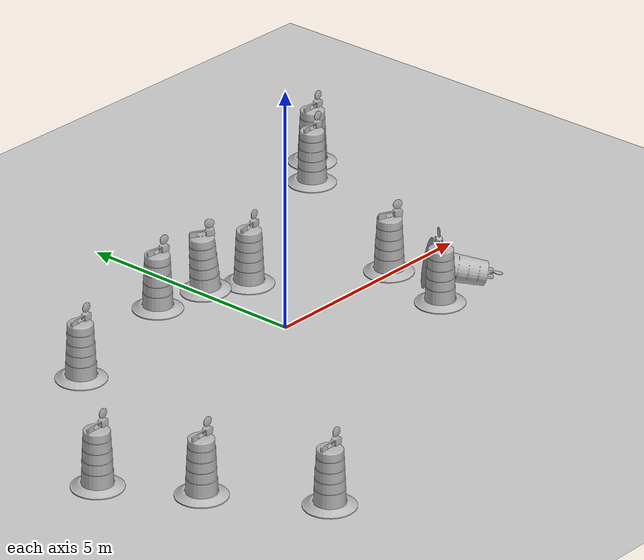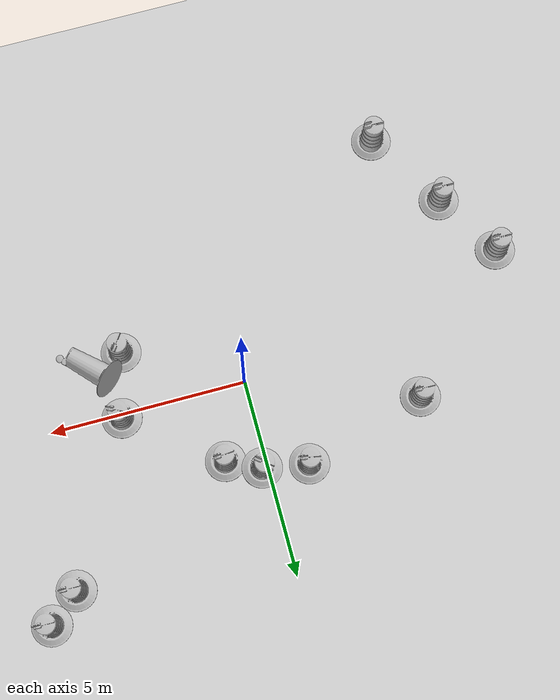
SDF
<sdf version="1.7">
 <world name="default">
  <light name="sun" type="directional">
   <pose>0 0 10 0 -0 0</pose>
   <diffuse>0.8 0.8 0.8 1</diffuse>
   <specular>0.2 0.2 0.2 1</specular>
   <attenuation>
    <range>1000</range>
    <constant>0.9</constant>
    <linear>0.01</linear>
    <quadratic>0.001</quadratic>
   </attenuation>
   <direction>-0.5 0.1 -0.9</direction>
   <spot><inner_angle>0</inner_angle><outer_angle>0</outer_angle><falloff>0</falloff></spot>
  </light>
  <model name="ground_plane">
   <static>1</static>
   <link name="link">
    <collision name="collision">
     <geometry><plane><normal>0 0 1</normal><size>100 100</size></plane></geometry>
     <surface>
      <contact><collide_bitmask>65535</collide_bitmask></contact>
      <friction><ode><mu>100</mu><mu2>50</mu2></ode></friction>
     </surface>
    </collision>
    <visual name="visual">
     <cast_shadows>0</cast_shadows>
     <geometry><plane><normal>0 0 1</normal><size>100 100</size></plane></geometry>
     <material>
      <script><uri>file://media/materials/scripts/gazebo.material</uri><name>Gazebo/Grey</name></script>
     </material>
    </visual>
   </link>
  </model>
  <gravity>0 0 -9.8</gravity>
  <magnetic_field>6e-06 2.3e-05 -4.2e-05</magnetic_field>
  <atmosphere type="adiabatic"/>
  <physics type="ode">
   <max_step_size>0.001</max_step_size>
   <real_time_factor>1</real_time_factor>
   <real_time_update_rate>1000</real_time_update_rate>
  </physics>
  <scene><ambient>0.4 0.4 0.4 1</ambient><background>0.7 0.7 0.7 1</background><shadows>1</shadows></scene>
  <audio><device>default</device></audio>
  <spherical_coordinates>
   <surface_model>EARTH_WGS84</surface_model>
   <latitude_deg>0</latitude_deg>
   <longitude_deg>0</longitude_deg>
   <elevation>0</elevation>
   <heading_deg>0</heading_deg>
  </spherical_coordinates>
  <model name="Construction Barrel">
   <link name="link">
    <inertial>
     <pose>0 0 0.4 0 -0 0</pose>
     <mass>500</mass>
     <inertia><ixx>51.2096</ixx><iyy>51.2096</iyy><izz>25</izz><ixy>0</ixy><ixz>0</ixz><iyz>0</iyz></inertia>
    </inertial>
    <collision name="collision">
     <geometry><mesh><uri>model://construction_barrel/meshes/construction_barrel.dae</uri></mesh></geometry>
    </collision>
    <visual name="visual">
     <geometry><mesh><uri>model://construction_barrel/meshes/construction_barrel.dae</uri></mesh></geometry>
    </visual>
   </link>
   <pose>3.19259 0.08221 -1e-06 6e-06 2e-06 -0.4433</pose>
  </model>
  <model name="Construction Barrel_0">
   <link name="link">
    <inertial>
     <pose>0 0 0.4 0 -0 0</pose>
     <mass>500</mass>
     <inertia><ixx>51.2096</ixx><iyy>51.2096</iyy><izz>25</izz><ixy>0</ixy><ixz>0</ixz><iyz>0</iyz></inertia>
    </inertial>
    <collision name="collision">
     <geometry><mesh><uri>model://construction_barrel/meshes/construction_barrel.dae</uri></mesh></geometry>
    </collision>
    <visual name="visual">
     <geometry><mesh><uri>model://construction_barrel/meshes/construction_barrel.dae</uri></mesh></geometry>
    </visual>
   </link>
   <pose>3.22383 -0.868695 0.497942 1.7913 0.127765 0.800915</pose>
  </model>
  <model name="Construction Barrel_1">
   <link name="link">
    <inertial>
     <pose>0 0 0.4 0 -0 0</pose>
     <mass>500</mass>
     <inertia><ixx>51.2096</ixx><iyy>51.2096</iyy><izz>25</izz><ixy>0</ixy><ixz>0</ixz><iyz>0</iyz></inertia>
    </inertial>
    <collision name="collision">
     <geometry><mesh><uri>model://construction_barrel/meshes/construction_barrel.dae</uri></mesh></geometry>
    </collision>
    <visual name="visual">
     <geometry><mesh><uri>model://construction_barrel/meshes/construction_barrel.dae</uri></mesh></geometry>
    </visual>
   </link>
   <pose>2.81489 -1.54923 -1e-06 3e-06 -2e-06 0.957749</pose>
  </model>
  <model name="Construction Barrel_2">
   <link name="link">
    <inertial>
     <pose>0 0 0.4 0 -0 0</pose>
     <mass>500</mass>
     <inertia><ixx>51.2096</ixx><iyy>51.2096</iyy><izz>25</izz><ixy>0</ixy><ixz>0</ixz><iyz>0</iyz></inertia>
    </inertial>
    <collision name="collision">
     <geometry><mesh><uri>model://construction_barrel/meshes/construction_barrel.dae</uri></mesh></geometry>
    </collision>
    <visual name="visual">
     <geometry><mesh><uri>model://construction_barrel/meshes/construction_barrel.dae</uri></mesh></geometry>
    </visual>
   </link>
   <pose>-7.06435 -1.67637 -1e-06 2e-06 -1e-06 -1.9e-05</pose>
  </model>
  <model name="Construction Barrel_3">
   <link name="link">
    <inertial>
     <pose>0 0 0.4 0 -0 0</pose>
     <mass>500</mass>
     <inertia><ixx>51.2096</ixx><iyy>51.2096</iyy><izz>25</izz><ixy>0</ixy><ixz>0</ixz><iyz>0</iyz></inertia>
    </inertial>
    <collision name="collision">
     <geometry><mesh><uri>model://construction_barrel/meshes/construction_barrel.dae</uri></mesh></geometry>
    </collision>
    <visual name="visual">
     <geometry><mesh><uri>model://construction_barrel/meshes/construction_barrel.dae</uri></mesh></geometry>
    </visual>
   </link>
   <pose>-4.80146 -5.31465 -2e-06 1e-06 8e-06 -1.8e-05</pose>
  </model>
  <model name="Construction Barrel_4">
   <link name="link">
    <inertial>
     <pose>0 0 0.4 0 -0 0</pose>
     <mass>500</mass>
     <inertia><ixx>51.2096</ixx><iyy>51.2096</iyy><izz>25</izz><ixy>0</ixy><ixz>0</ixz><iyz>0</iyz></inertia>
    </inertial>
    <collision name="collision">
     <geometry><mesh><uri>model://construction_barrel/meshes/construction_barrel.dae</uri></mesh></geometry>
    </collision>
    <visual name="visual">
     <geometry><mesh><uri>model://construction_barrel/meshes/construction_barrel.dae</uri></mesh></geometry>
    </visual>
   </link>
   <pose>-6.04713 -3.31257 -0 0 -0 -1.5e-05</pose>
  </model>
  <model name="Construction Barrel_5">
   <link name="link">
    <inertial>
     <pose>0 0 0.4 0 -0 0</pose>
     <mass>500</mass>
     <inertia><ixx>51.2096</ixx><iyy>51.2096</iyy><izz>25</izz><ixy>0</ixy><ixz>0</ixz><iyz>0</iyz></inertia>
    </inertial>
    <collision name="collision">
     <geometry><mesh><uri>model://construction_barrel/meshes/construction_barrel.dae</uri></mesh></geometry>
    </collision>
    <visual name="visual">
     <geometry><mesh><uri>model://construction_barrel/meshes/construction_barrel.dae</uri></mesh></geometry>
    </visual>
   </link>
   <pose>-1.02477 2.4018 -2e-06 -5e-06 -2e-06 -0.159541</pose>
  </model>
  <model name="Construction Barrel_6">
   <link name="link">
    <inertial>
     <pose>0 0 0.4 0 -0 0</pose>
     <mass>500</mass>
     <inertia><ixx>51.2096</ixx><iyy>51.2096</iyy><izz>25</izz><ixy>0</ixy><ixz>0</ixz><iyz>0</iyz></inertia>
    </inertial>
    <collision name="collision">
     <geometry><mesh><uri>model://construction_barrel/meshes/construction_barrel.dae</uri></mesh></geometry>
    </collision>
    <visual name="visual">
     <geometry><mesh><uri>model://construction_barrel/meshes/construction_barrel.dae</uri></mesh></geometry>
    </visual>
   </link>
   <pose>0.136995 2.20014 0.031878 0.008928 -0.062371 -0.654847</pose>
  </model>
  <model name="Construction Barrel_7">
   <link name="link">
    <inertial>
     <pose>0 0 0.4 0 -0 0</pose>
     <mass>500</mass>
     <inertia><ixx>51.2096</ixx><iyy>51.2096</iyy><izz>25</izz><ixy>0</ixy><ixz>0</ixz><iyz>0</iyz></inertia>
    </inertial>
    <collision name="collision">
     <geometry><mesh><uri>model://construction_barrel/meshes/construction_barrel.dae</uri></mesh></geometry>
    </collision>
    <visual name="visual">
     <geometry><mesh><uri>model://construction_barrel/meshes/construction_barrel.dae</uri></mesh></geometry>
    </visual>
   </link>
   <pose>0.971741 1.80249 -4e-06 -6e-06 -8e-06 0.093072</pose>
  </model>
  <model name="Construction Barrel_8">
   <link name="link">
    <inertial>
     <pose>0 0 0.4 0 -0 0</pose>
     <mass>500</mass>
     <inertia><ixx>51.2096</ixx><iyy>51.2096</iyy><izz>25</izz><ixy>0</ixy><ixz>0</ixz><iyz>0</iyz></inertia>
    </inertial>
    <collision name="collision">
     <geometry><mesh><uri>model://construction_barrel/meshes/construction_barrel.dae</uri></mesh></geometry>
    </collision>
    <visual name="visual">
     <geometry><mesh><uri>model://construction_barrel/meshes/construction_barrel.dae</uri></mesh></geometry>
    </visual>
   </link>
   <pose>-4.15766 1.48698 -2e-06 1e-06 7e-06 -7e-06</pose>
  </model>
  <model name="Construction Barrel_9">
   <link name="link">
    <inertial>
     <pose>0 0 0.4 0 -0 0</pose>
     <mass>500</mass>
     <inertia><ixx>51.2096</ixx><iyy>51.2096</iyy><izz>25</izz><ixy>0</ixy><ixz>0</ixz><iyz>0</iyz></inertia>
    </inertial>
    <collision name="collision">
     <geometry><mesh><uri>model://construction_barrel/meshes/construction_barrel.dae</uri></mesh></geometry>
    </collision>
    <visual name="visual">
     <geometry><mesh><uri>model://construction_barrel/meshes/construction_barrel.dae</uri></mesh></geometry>
    </visual>
   </link>
   <pose>5.28771 3.93617 0 -3e-06 -2e-06 -7e-06</pose>
  </model>
  <model name="Construction Barrel_10">
   <link name="link">
    <inertial>
     <pose>0 0 0.4 0 -0 0</pose>
     <mass>500</mass>
     <inertia><ixx>51.2096</ixx><iyy>51.2096</iyy><izz>25</izz><ixy>0</ixy><ixz>0</ixz><iyz>0</iyz></inertia>
    </inertial>
    <collision name="collision">
     <geometry><mesh><uri>model://construction_barrel/meshes/construction_barrel.dae</uri></mesh></geometry>
    </collision>
    <visual name="visual">
     <geometry><mesh><uri>model://construction_barrel/meshes/construction_barrel.dae</uri></mesh></geometry>
    </visual>
   </link>
   <pose>6.05859 4.60166 -3e-06 -0 -1.2e-05 -4e-06</pose>
  </model>
 </world>
</sdf>
